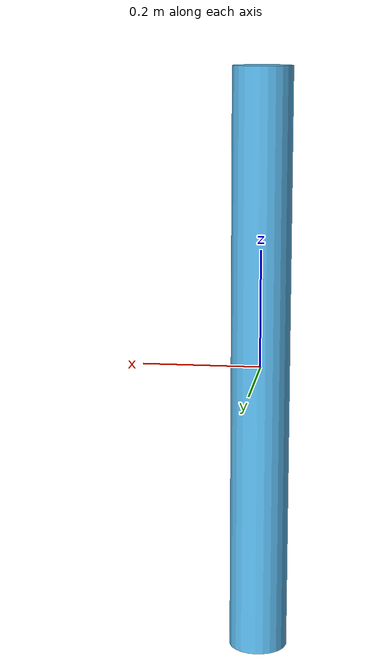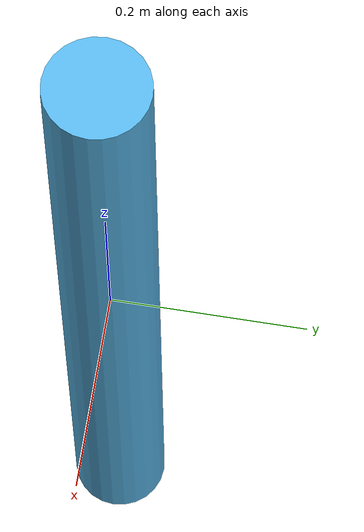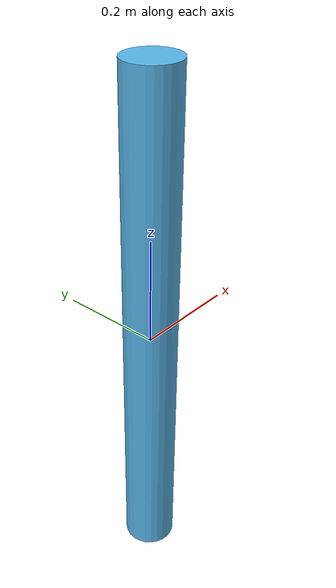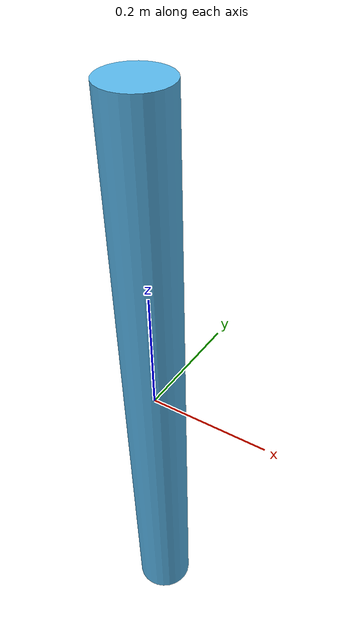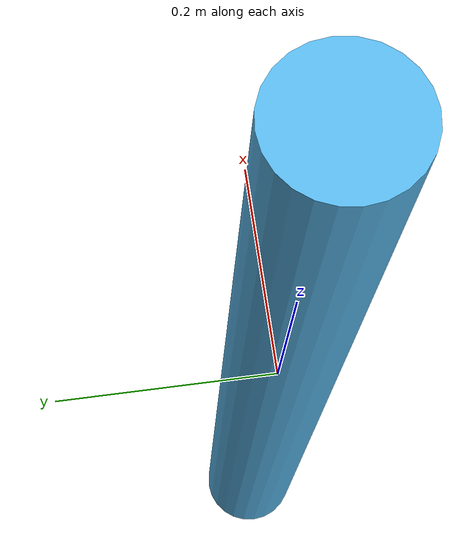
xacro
<robot xmlns:xacro="http://www.ros.org/wiki/xacro" name="CameraRobot">

    <!-- Serves as the root link of the robot description tree -->
    <link name="base_link" />

    <!-- Used to support the camera above the  -->
    <link name="support">
        <visual>
            <geometry>
                <cylinder length="1" radius="0.05" />
            </geometry>
        </visual>

        <collision>
            <geometry>
                <cylinder length="1" radius="0.05" />
            </geometry>
        </collision>
        <inertial>
            <mass value="1"/>
            <inertia ixx="1.0" ixy="0.0" ixz="0.0" iyy="1.0" iyz="0.0" izz="1.0"/>
        </inertial>
    </link>

    <!-- Denotes the transform representing the camera pose -->
    <link name="camera_link" />

    <joint name="base_to_support" type="fixed">
        <parent link="base_link" />
        <child link="support" />
    </joint>

    <!-- Attaches the camera link in relation to the support link -->
    <joint name="support_to_camera_link" type="fixed">
        <parent link="support" />
        <child link="camera_link" />
        <origin xyz="0.06 0 0.9" rpy="${135*pi/180} 0 ${pi/2}" />
    </joint>

    <!-- Specifies a macro for inserting a single stereovision camera into a xacro model description -->
    <!-- Note: This macro assumes there exists a "camera_link" that more or less serves as the pose -->
    <!--        of the camera -->
    <xacro:macro name="stereo_camera_gazebo" params="baseline">

        <!-- Used to align camera between Gazebo / ROS coordinate systems -->
        <link name="gazebo_camera_link">
        </link>

        <joint name="gazebo_camera_joint" type="fixed">
            <parent link="camera_link" />
            <child link="gazebo_camera_link" />
            <origin xyz="0 0 0" rpy="${pi/2} ${-pi/2} ${pi}" />
        </joint>

        <link name="gazebo_camera_optical_link">
        </link>

        <joint name="gazebo_camera_optical_joint" type="fixed">
            <parent link="gazebo_camera_link" />
            <child link="gazebo_camera_optical_link" />
            <origin xyz="0 0 0" rpy="${-pi/2} 0 ${-pi/2}" />
        </joint>

        <!-- Specifies configurations for simulating in Gazebo -->
        <gazebo reference="gazebo_camera_link">
            <sensor name="camera" type="depth">
                <visualize>true</visualize>
                <update_rate>60.0</update_rate>
                <camera name="head">
                    <horizontal_fov>${110*pi/180}</horizontal_fov>
                    <image>
                        <width>1280</width>
                        <height>720</height>
                        <format>R8G8B8</format>
                    </image>
                    <clip>
                        <near>1.0</near>
                        <far>20</far>
                    </clip>
                </camera>
                <plugin name="depth_camera_controller" filename="libgazebo_ros_camera.so">
                    <baseline>0.2</baseline>
                    <alwaysOn>true</alwaysOn>
                    <updateRate>0.0</updateRate>
                    <frame_name>gazebo_camera_optical_link</frame_name>
                    <pointCloudCutoff>0.1</pointCloudCutoff>
                    <pointCloudCutoffMax>10.0</pointCloudCutoffMax>
                    <distortionK1>0</distortionK1>
                    <distortionK2>0</distortionK2>
                    <distortionK3>0</distortionK3>
                    <distortionT1>0</distortionT1>
                    <distortionT2>0</distortionT2>
                    <CxPrime>0</CxPrime>
                    <Cx>0</Cx>
                    <Cy>0</Cy>
                    <min_depth>0.1</min_depth>
                    <max_depth>100.0</max_depth>
                    <focalLength>0</focalLength>
                    <hackBaseline>0</hackBaseline>
                </plugin>
            </sensor>
        </gazebo>

    </xacro:macro>
    <xacro:stereo_camera_gazebo baseline="0.1" />
</robot>
